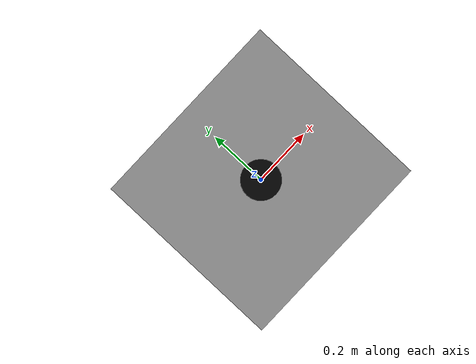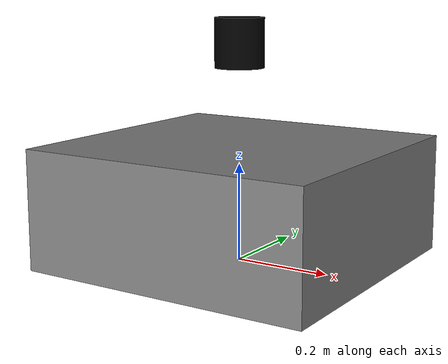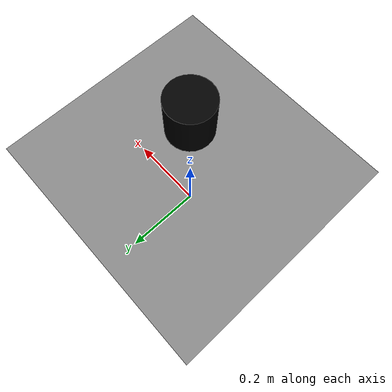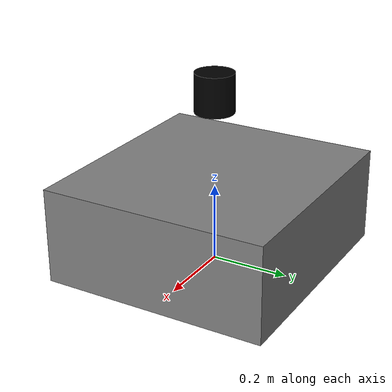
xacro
<robot name="scout_mini" xmlns:xacro="http://ros.org/wiki/xacro">
  <xacro:property name="base_width" value="0.580"/>
  <xacro:property name="base_length" value="0.612"/>
  <xacro:property name="base_height" value="0.245"/>

  <link name="base_link">
    <visual>
      <geometry>
        <box size="${base_length} ${base_width} ${base_height}"/>
      </geometry>
      <origin xyz="0 0 ${base_height/2}"/>
      <material name="grey">
        <color rgba="0.5 0.5 0.5 1.0"/>
      </material>
    </visual>
    <collision>
      <geometry>
        <box size="${base_length} ${base_width} ${base_height}"/>
      </geometry>
      <origin xyz="0 0 ${base_height/2}"/>
    </collision>
  </link>

  <link name="rslidar">
    <visual>
      <geometry>
        <cylinder radius="0.05" length="0.1"/>
      </geometry>
      <origin xyz="0 0 0.2"/>
      <material name="black">
        <color rgba="0.0 0.0 0.0 1.0"/>
      </material>
    </visual>
    <collision>
      <geometry>
        <cylinder radius="0.05" length="0.1"/>
      </geometry>
      <origin xyz="0 0 0.2"/>
    </collision>
  </link>

  <joint name="base_to_rslidar" type="fixed">
    <parent link="base_link"/>
    <child link="rslidar"/>
    <origin xyz="0 0 ${base_height}"/>
  </joint>

  <!-- Add other links and joints here -->

</robot>
